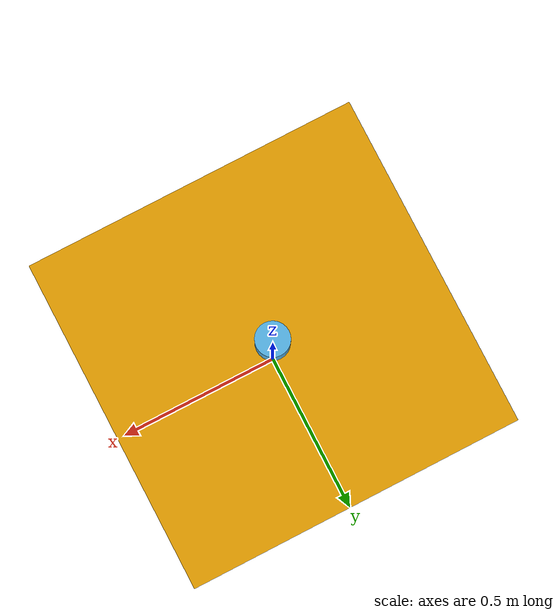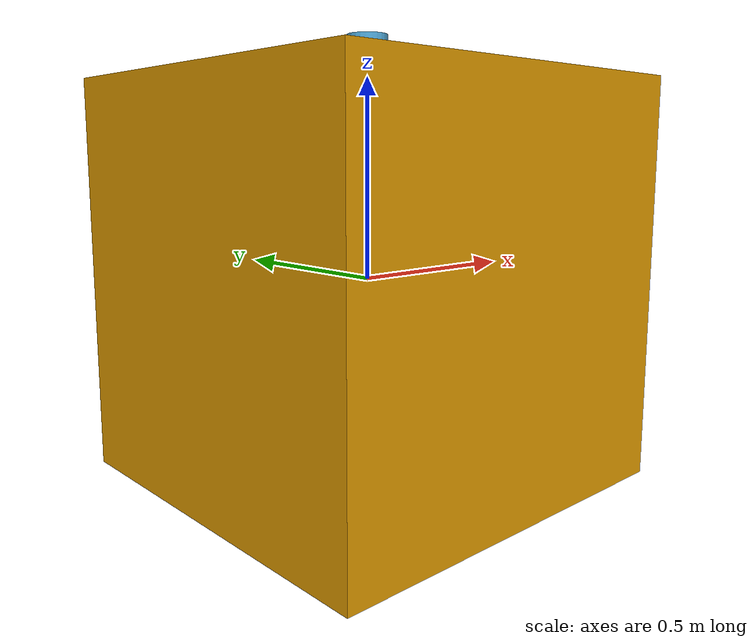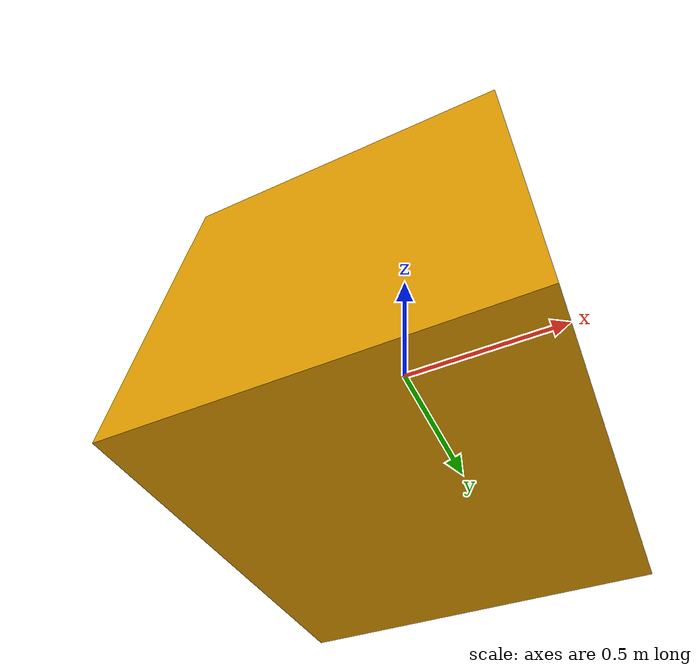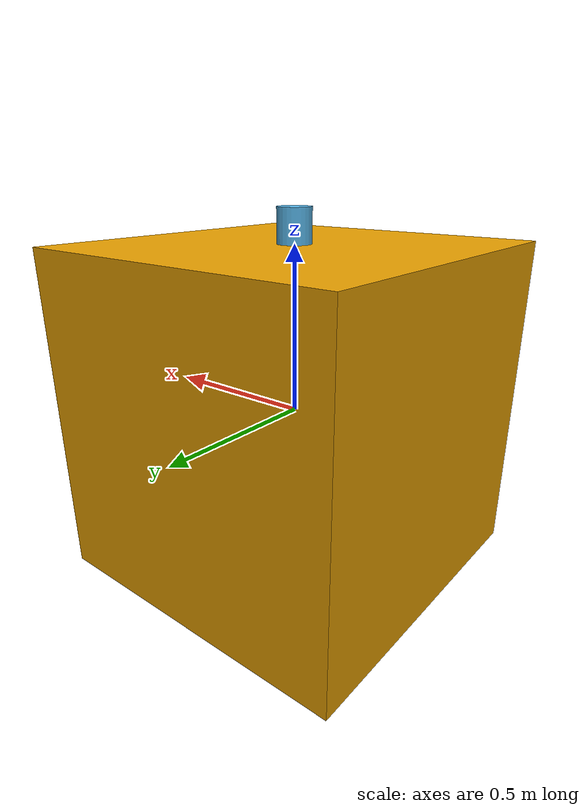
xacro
<?xml version="1.0"?>
<robot xmlns:xacro="http://www.ros.org/wiki/xacro" name="my_robot">

  <link name="base_link">
    <inertial>
      <mass value="1.0"/>
      <origin xyz="0 0 0"/>
      <inertia ixx="0.1" ixy="0.0" ixz="0.0" iyy="0.1" iyz="0.0" izz="0.1"/>
    </inertial>
    <collision>
      <geometry>
        <box size="1 1 1"/>
      </geometry>
    </collision>
    <visual>
      <geometry>
        <box size="1 1 1"/>
      </geometry>
    </visual>
  </link>

  <link name="knob">
    <inertial>
      <mass value="0.1"/>
      <origin xyz="0 0 0"/>
      <inertia ixx="0.01" ixy="0.0" ixz="0.0" iyy="0.01" iyz="0.0" izz="0.01"/>
    </inertial>
    <collision>
      <geometry>
        <cylinder length="0.1" radius="0.05"/>
      </geometry>
    </collision>
    <visual>
      <geometry>
        <cylinder length="0.1" radius="0.05"/>
      </geometry>
    </visual>
  </link>

  <joint name="knob_joint" type="continuous">
    <parent link="base_link"/>
    <child link="knob"/>
    <origin xyz="0 0 0.55" rpy="0 0 0"/>
    <axis xyz="0 0 1"/>
    <limit lower="-1.57" upper="1.57"/>
  </joint>

  <gazebo>
    <plugin name="joint_state_publisher" filename="libgazebo_ros_joint_state_publisher.so"/>
  </gazebo>
</robot>
